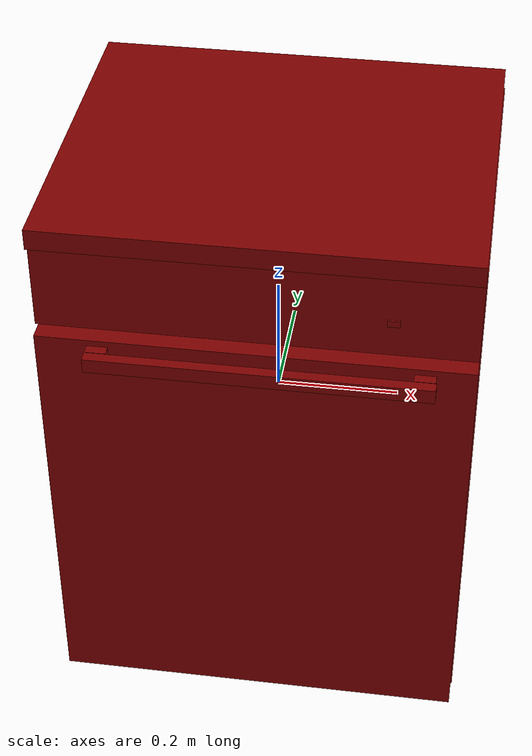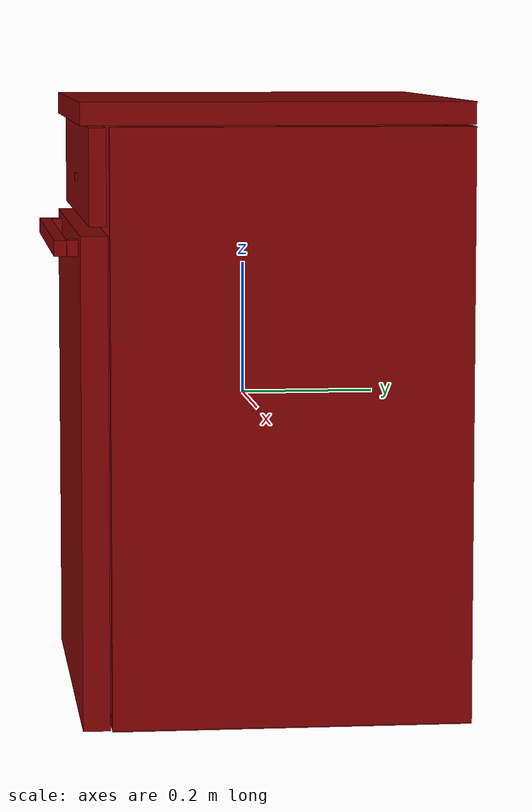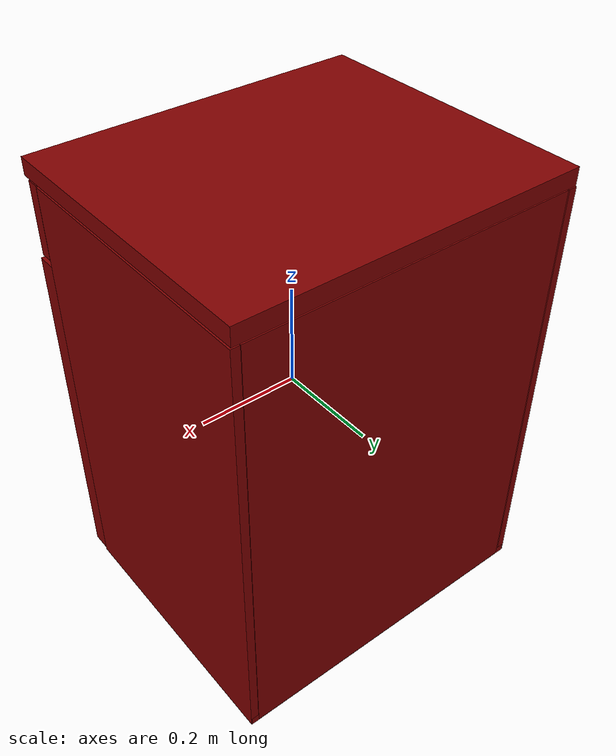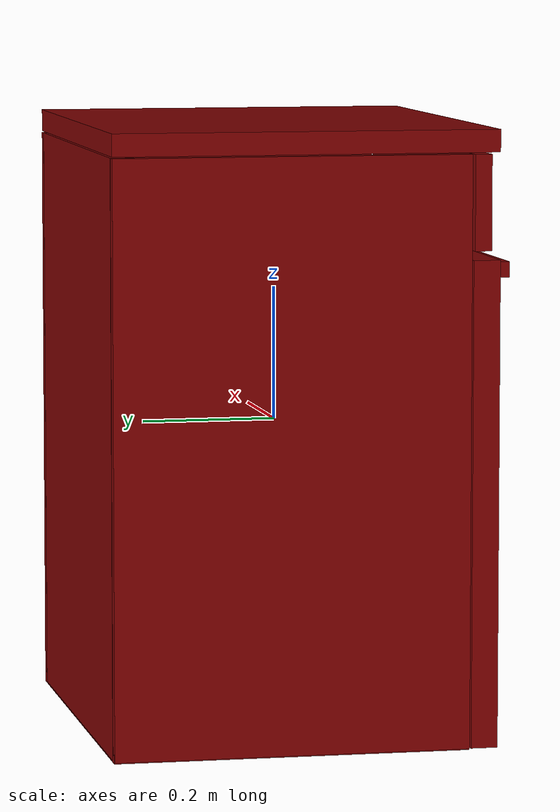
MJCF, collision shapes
<mujoco model="model">
  <compiler angle="radian"/>
  <asset>
    <mesh file="visuals/Body001.obj" name="Body001_vis"/>
    <mesh file="visuals/Button001.obj" name="Button001_vis"/>
    <mesh file="visuals/Container001.obj" name="Container001_vis"/>
    <mesh file="visuals/Container002.obj" name="Container002_vis"/>
    <mesh file="visuals/Door001.obj" name="Door001_vis"/>
    <mesh file="visuals/Handle001.obj" name="Handle001_vis"/>
    <texture file="visuals/T_BC001.png" name="Body001_material" type="2d"/>
    <material name="Body001_material" rgba="1 1 1 1.0" texture="Body001_material" shininess="0.5" specular="0.3103448502657381"/>
    <texture file="visuals/T_BC001.png" name="Button001_material" type="2d"/>
    <material name="Button001_material" rgba="1 1 1 1.0" texture="Button001_material" shininess="0.5" specular="0.3103448502657381"/>
    <texture file="visuals/T_BC001.png" name="Container001_material" type="2d"/>
    <material name="Container001_material" rgba="1 1 1 1.0" texture="Container001_material" shininess="0.5" specular="0.3103448502657381"/>
    <texture file="visuals/T_BC001.png" name="Container002_material" type="2d"/>
    <material name="Container002_material" rgba="1 1 1 1.0" texture="Container002_material" shininess="0.5" specular="0.3103448502657381"/>
    <texture file="visuals/T_BC001.png" name="Door001_material" type="2d"/>
    <material name="Door001_material" rgba="1 1 1 1.0" texture="Door001_material" shininess="0.5" specular="0.3103448502657381"/>
    <texture file="visuals/T_BC001.png" name="Handle001_material" type="2d"/>
    <material name="Handle001_material" rgba="1 1 1 1.0" texture="Handle001_material" shininess="0.5" specular="0.3103448502657381"/>
  </asset>
  <default>
    <default class="visual">
      <geom conaffinity="0" contype="0" group="1" type="mesh"/>
    </default>
    <default class="collision">
      <geom group="0" rgba="0.5 0 0 0.5"/>
    </default>
    <default class="spawn">
      <geom group="0" rgba="1 1 1 0.5" contype="0" conaffinity="0"/>
      <site group="0" rgba="1 1 1 0.5"/>
    </default>
    <default class="region">
      <geom group="1" conaffinity="0" contype="0" rgba="0 1 0 0"/>
    </default>
  </default>
  <worldbody>
    <body>
      <body name="object">
        <geom mesh="Body001_vis" type="mesh" solimp="0.998 0.998 0.001" solref="0.001 1" density="100" friction="0.95 0.3 0.1" class="visual" material="Body001_material"/>
        <geom class="collision" type="box" pos="-0.324750 0.038425 -0.016732" size="0.0080038383603096 0.26262733340263367 0.4344075620174408" quat="1.0 0.0 0.0 0.0"/>
        <geom class="collision" type="box" pos="0.324750 0.038425 -0.016732" size="0.0080038383603096 0.26262733340263367 0.4344075620174408" quat="1.0 0.0 0.0 0.0"/>
        <geom class="collision" type="box" pos="0.001097 0.283528 -0.016732" size="0.3148406744003296 0.017524447292089462 0.4344075620174408" quat="1.0 0.0 0.0 0.0"/>
        <geom class="collision" type="box" pos="0.000332 0.017553 0.436477" size="0.33068734407424927 0.28349998593330383 0.016508597880601883" quat="1.0 0.0 0.0 0.0"/>
        <geom class="collision" type="box" pos="0.000332 -0.241325 0.347263" size="0.33068734407424927 0.012284115888178349 0.06984749436378479" quat="1.0 0.0 0.0 0.0"/>
        <geom class="collision" type="box" pos="0.000332 0.038602 -0.444567" size="0.33068734407424927 0.2624503970146179 0.008419089950621128" quat="1.0 0.0 0.0 0.0"/>
        <body name="Button001">
          <joint axis="0.0 1.0 0.0" pos="0.204849 -0.264950 0.342873" limited="true" name="Button001_joint" range="0.0 0.002" type="slide" damping="1" frictionloss="1" armature=".01" stiffness="0.05"/>
          <geom mesh="Button001_vis" type="mesh" solimp="0.998 0.998 0.001" solref="0.001 1" density="100" friction="0.95 0.3 0.1" class="visual" material="Button001_material"/>
          <geom class="collision" type="box" pos="0.204849 -0.265087 0.342873" size="0.00952561479061842 0.0015023439191281796 0.005382320377975702" quat="1.0 0.0 0.0 0.0"/>
        </body>
        <body name="Container001">
          <joint axis="0.0 -1.0 0.0" pos="-0.000840 0.081049 0.038105" limited="true" name="Container001_joint" range="0.0 0.15" type="slide" damping="1" frictionloss="1" armature=".01" stiffness="0.05"/>
          <geom mesh="Container001_vis" type="mesh" solimp="0.998 0.998 0.001" solref="0.001 1" density="100" friction="0.95 0.3 0.1" class="visual" material="Container001_material"/>
          <geom class="collision" type="box" pos="-0.308432 0.080097 0.042913" size="0.005001414567232132 0.17790678143501282 0.08809547126293182" quat="1.0 0.0 0.0 0.0"/>
          <geom class="collision" type="box" pos="0.308304 0.080097 0.042913" size="0.007361200638115406 0.17790678143501282 0.08809547126293182" quat="1.0 0.0 0.0 0.0"/>
          <geom class="collision" type="box" pos="-0.000054 0.080639 -0.046923" size="0.3007862865924835 0.17103725671768188 0.008665774948894978" quat="1.0 0.0 0.0 0.0"/>
          <geom class="collision" type="box" pos="-0.000792 0.249554 0.042913" size="0.3019328713417053 0.0066688936203718185 0.08809547126293182" quat="1.0 0.0 0.0 0.0"/>
          <geom class="collision" type="box" pos="-0.000792 -0.089253 0.042913" size="0.3019328713417053 0.008202359080314636 0.08809547126293182" quat="1.0 0.0 0.0 0.0"/>
        </body>
        <body name="Container002">
          <joint axis="0.0 -1.0 0.0" pos="-0.000840 0.081049 -0.243258" limited="true" name="Container002_joint" range="0.0 0.15" type="slide" damping="1" frictionloss="1" armature=".01" stiffness="0.05"/>
          <geom mesh="Container002_vis" type="mesh" solimp="0.998 0.998 0.001" solref="0.001 1" density="100" friction="0.95 0.3 0.1" class="visual" material="Container002_material"/>
          <geom class="collision" type="box" pos="-0.000792 -0.089253 -0.237231" size="0.3019328713417053 0.008202359080314636 0.08809547126293182" quat="1.0 0.0 0.0 0.0"/>
          <geom class="collision" type="box" pos="-0.000792 0.249554 -0.237231" size="0.3019328713417053 0.0066688936203718185 0.08809547126293182" quat="1.0 0.0 0.0 0.0"/>
          <geom class="collision" type="box" pos="-0.000054 0.080639 -0.329662" size="0.3007862865924835 0.17103725671768188 0.008151129819452763" quat="1.0 0.0 0.0 0.0"/>
          <geom class="collision" type="box" pos="0.308259 0.080097 -0.237231" size="0.007406636141240597 0.17790678143501282 0.08809547126293182" quat="1.0 0.0 0.0 0.0"/>
          <geom class="collision" type="box" pos="-0.308432 0.080097 -0.237231" size="0.005001414567232132 0.17790678143501282 0.08809547126293182" quat="1.0 0.0 0.0 0.0"/>
        </body>
        <body name="Door001">
          <joint axis="1.0 0.0 0.0" pos="0.000000 -0.246753 -0.447794" limited="true" name="Door001_joint" range="0.0 0.5235987755982988" type="hinge" damping="1" frictionloss="1" armature=".01" stiffness="0.05"/>
          <geom mesh="Door001_vis" type="mesh" solimp="0.998 0.998 0.001" solref="0.001 1" density="100" friction="0.95 0.3 0.1" class="visual" material="Door001_material"/>
          <geom class="collision" type="box" pos="-0.000014 -0.246820 -0.093421" size="0.3307572305202484 0.01974380761384964 0.3577193021774292" quat="1.0 0.0 0.0 0.0"/>
          <body name="Handle001">
            <geom mesh="Handle001_vis" type="mesh" solimp="0.998 0.998 0.001" solref="0.001 1" density="100" friction="0.95 0.3 0.1" class="visual" material="Handle001_material"/>
            <geom class="collision" type="box" pos="0.010880 -0.291992 0.242937" size="0.26153069734573364 0.008888834156095982 0.011611318215727806" quat="1.0 0.0 0.0 0.0"/>
            <geom class="collision" type="box" pos="-0.234676 -0.273611 0.242937" size="0.016155898571014404 0.008888834156095982 0.011611318215727806" quat="1.0 0.0 0.0 0.0"/>
            <geom class="collision" type="box" pos="0.255135 -0.273611 0.242937" size="0.016155898571014404 0.008888834156095982 0.011611318215727806" quat="1.0 0.0 0.0 0.0"/>
          </body>
        </body>
        <geom class="region" name="reg_main" type="box" pos="0.0 0.01719000000000001 0.00018199999999998773" size="0.329845 0.283114 0.45056799999999997"/>
        <geom class="region" name="reg_int" type="box" pos="0.0004310000000000147 0.022710499999999995 -0.092348" size="0.312892 0.2370145 0.337083"/>
      </body>
    </body>
  </worldbody>
  <actuator>
    <motor name="Button001_joint_actuator" joint="Button001_joint" gear="0.1"/>
    <motor name="Container001_joint_actuator" joint="Container001_joint" gear="10"/>
    <motor name="Container002_joint_actuator" joint="Container002_joint" gear="10"/>
    <motor name="Door001_joint_actuator" joint="Door001_joint" gear="50"/>
  </actuator>
</mujoco>
